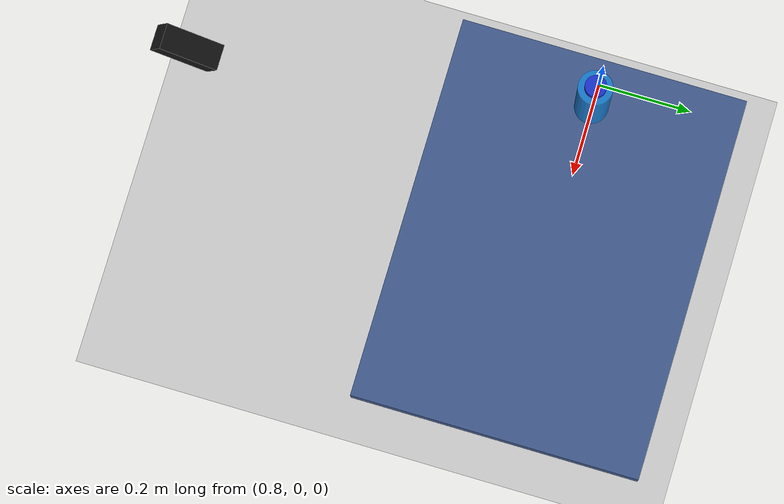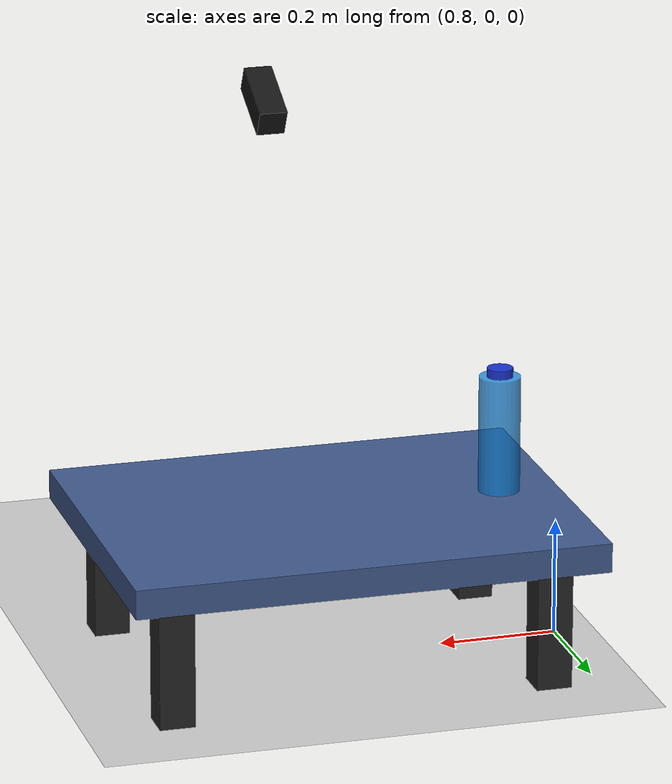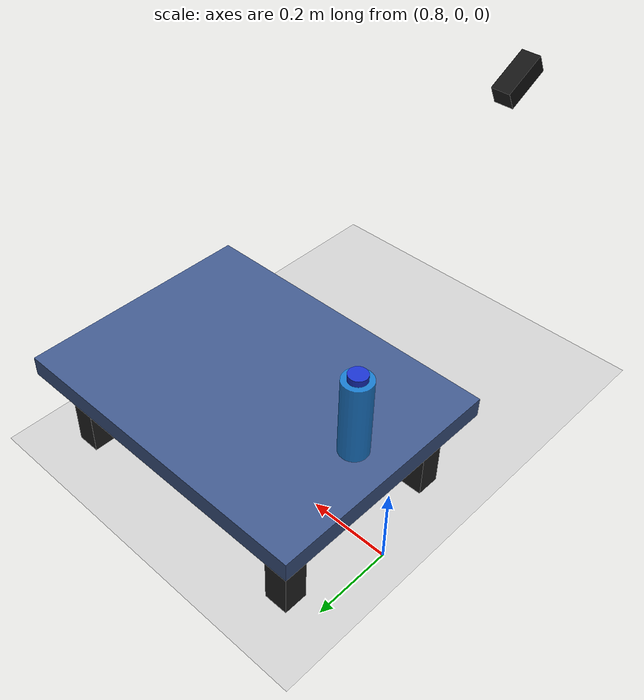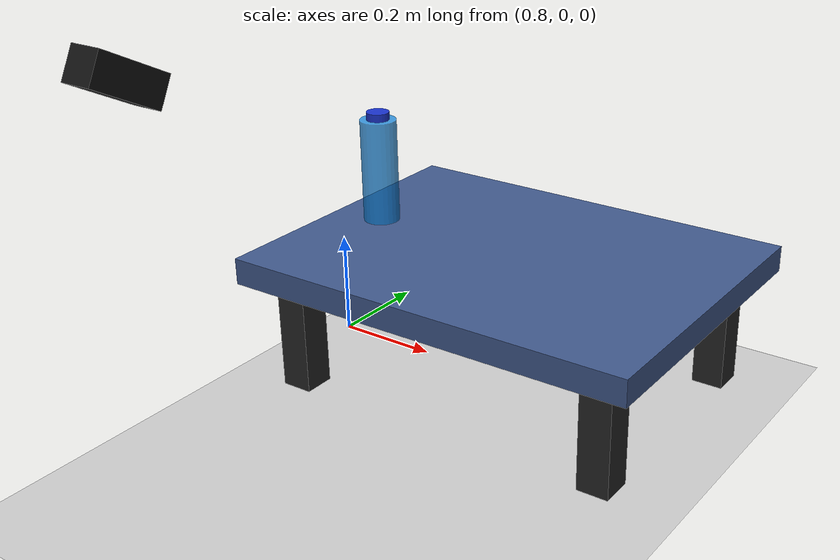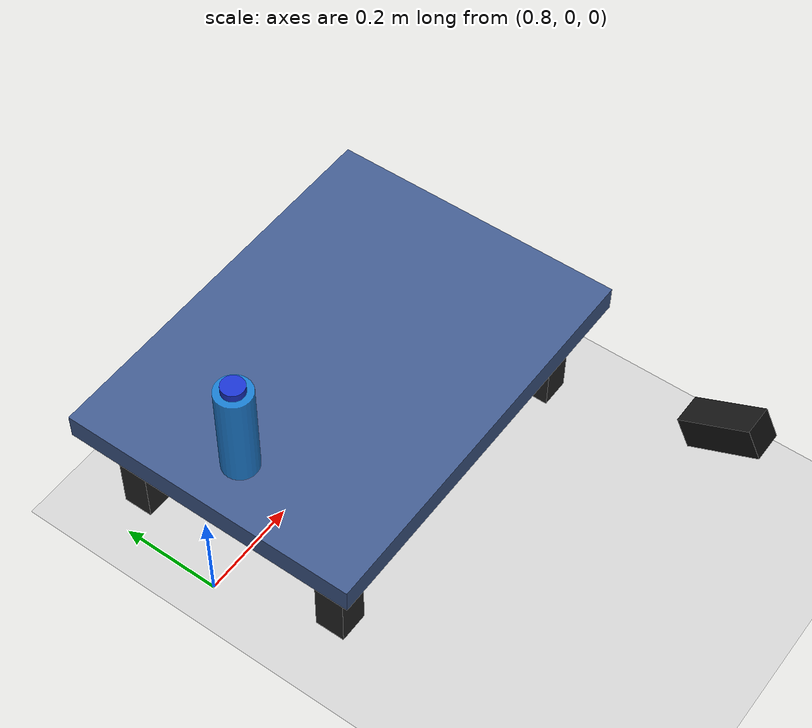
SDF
<?xml version="1.0"?>
<sdf version="1.6">
  <world name="handover_station">

    <gravity>0 0 -9.81</gravity>

    <physics name="default_physics" type="ode">
      <max_step_size>0.001</max_step_size>
      <real_time_factor>1.0</real_time_factor>
      <real_time_update_rate>1000</real_time_update_rate>
    </physics>

    <scene>
      <ambient>0.4 0.4 0.4 1</ambient>
      <background>0.7 0.7 0.7 1</background>
      <shadows>true</shadows>
    </scene>

    <light name="sun" type="directional">
      <cast_shadows>true</cast_shadows>
      <pose>0 0 10 0 0 0</pose>
      <diffuse>0.8 0.8 0.8 1</diffuse>
      <specular>0.2 0.2 0.2 1</specular>
      <direction>-0.5 0.1 -0.9</direction>
    </light>

    <include>
      <uri>model://ground_plane</uri>
    </include>

    <model name="station_table">
      <static>true</static>
      <pose>1.2 0 0 0 0 0</pose>

      <link name="table_link">
        <collision name="top_collision">
          <pose>0 0 0.24 0 0 0</pose>
          <geometry>
            <box>
              <size>0.8 0.6 0.05</size>
            </box>
          </geometry>
        </collision>

        <visual name="top_visual">
          <pose>0 0 0.24 0 0 0</pose>
          <geometry>
            <box>
              <size>0.8 0.6 0.05</size>
            </box>
          </geometry>
          <material>
            <ambient>0.25 0.35 0.55 1</ambient>
            <diffuse>0.25 0.35 0.55 1</diffuse>
          </material>
        </visual>

        <collision name="leg_1_collision">
          <pose>0.32 0.22 0.1075 0 0 0</pose>
          <geometry>
            <box>
              <size>0.06 0.06 0.215</size>
            </box>
          </geometry>
        </collision>
        <visual name="leg_1_visual">
          <pose>0.32 0.22 0.1075 0 0 0</pose>
          <geometry>
            <box>
              <size>0.06 0.06 0.215</size>
            </box>
          </geometry>
          <material>
            <diffuse>0.15 0.15 0.15 1</diffuse>
          </material>
        </visual>

        <collision name="leg_2_collision">
          <pose>0.32 -0.22 0.1075 0 0 0</pose>
          <geometry>
            <box>
              <size>0.06 0.06 0.215</size>
            </box>
          </geometry>
        </collision>
        <visual name="leg_2_visual">
          <pose>0.32 -0.22 0.1075 0 0 0</pose>
          <geometry>
            <box>
              <size>0.06 0.06 0.215</size>
            </box>
          </geometry>
          <material>
            <diffuse>0.15 0.15 0.15 1</diffuse>
          </material>
        </visual>

        <collision name="leg_3_collision">
          <pose>-0.32 0.22 0.1075 0 0 0</pose>
          <geometry>
            <box>
              <size>0.06 0.06 0.215</size>
            </box>
          </geometry>
        </collision>
        <visual name="leg_3_visual">
          <pose>-0.32 0.22 0.1075 0 0 0</pose>
          <geometry>
            <box>
              <size>0.06 0.06 0.215</size>
            </box>
          </geometry>
          <material>
            <diffuse>0.15 0.15 0.15 1</diffuse>
          </material>
        </visual>

        <collision name="leg_4_collision">
          <pose>-0.32 -0.22 0.1075 0 0 0</pose>
          <geometry>
            <box>
              <size>0.06 0.06 0.215</size>
            </box>
          </geometry>
        </collision>
        <visual name="leg_4_visual">
          <pose>-0.32 -0.22 0.1075 0 0 0</pose>
          <geometry>
            <box>
              <size>0.06 0.06 0.215</size>
            </box>
          </geometry>
          <material>
            <diffuse>0.15 0.15 0.15 1</diffuse>
          </material>
        </visual>
      </link>
    </model>

    <model name="water_bottle">
      <pose>0.9 0 0.365 0 0 0</pose>

      <link name="bottle_link">
        <inertial>
          <mass>0.3</mass>
          <inertia>
            <ixx>0.002342</ixx>
            <iyy>0.002342</iyy>
            <izz>0.000184</izz>
          </inertia>
        </inertial>

        <collision name="bottle_collision">
          <geometry>
            <cylinder>
              <radius>0.035</radius>
              <length>0.20</length>
            </cylinder>
          </geometry>
          <surface>
            <friction>
              <ode>
                <mu>0.8</mu>
                <mu2>0.8</mu2>
              </ode>
            </friction>
          </surface>
        </collision>

        <visual name="bottle_visual">
          <geometry>
            <cylinder>
              <radius>0.035</radius>
              <length>0.20</length>
            </cylinder>
          </geometry>
          <material>
            <ambient>0.1 0.55 0.9 0.8</ambient>
            <diffuse>0.1 0.55 0.9 0.8</diffuse>
          </material>
        </visual>

        <visual name="cap_visual">
          <pose>0 0 0.1075 0 0 0</pose>
          <geometry>
            <cylinder>
              <radius>0.022</radius>
              <length>0.015</length>
            </cylinder>
          </geometry>
          <material>
            <ambient>0.1 0.2 0.8 1</ambient>
            <diffuse>0.1 0.2 0.8 1</diffuse>
          </material>
        </visual>
      </link>
    </model>
    <model name="station_rgbd_camera">
      <static>true</static>

      <!-- 테이블 측면 위쪽에서 물병을 내려다보는 위치 -->
      <pose>1.1 -0.75 0.75 0 0.48 1.5708</pose>

      <link name="camera_link">
        <visual name="camera_body_visual">
          <geometry>
            <box>
              <size>0.12 0.05 0.05</size>
            </box>
          </geometry>
          <material>
            <ambient>0.08 0.08 0.08 1</ambient>
            <diffuse>0.08 0.08 0.08 1</diffuse>
          </material>
        </visual>

        <sensor name="rgbd_sensor" type="depth">
          <always_on>true</always_on>
          <update_rate>15</update_rate>
          <visualize>false</visualize>

          <camera>
            <horizontal_fov>1.0471976</horizontal_fov>

            <image>
              <width>640</width>
              <height>480</height>
              <format>R8G8B8</format>
            </image>

            <clip>
              <near>0.10</near>
              <far>5.0</far>
            </clip>

            <noise>
              <type>gaussian</type>
              <mean>0.0</mean>
              <stddev>0.002</stddev>
            </noise>
          </camera>

          <plugin
            name="station_rgbd_camera_plugin"
            filename="libgazebo_ros_camera.so">

            <ros>
              <namespace>/station_camera</namespace>
              <remapping>image_raw:=color/image_raw</remapping>
              <remapping>camera_info:=color/camera_info</remapping>
            </ros>

            <camera_name>station_rgbd</camera_name>
            <frame_name>station_camera_optical_frame</frame_name>
            <hack_baseline>0.0</hack_baseline>
            <min_depth>0.10</min_depth>
            <max_depth>5.0</max_depth>
          </plugin>
        </sensor>
      </link>
    </model>
  </world>
</sdf>
